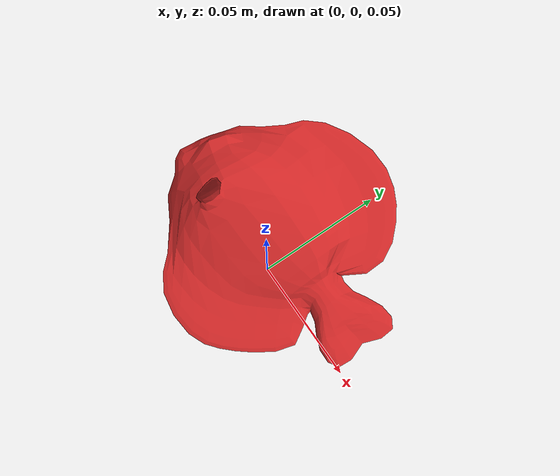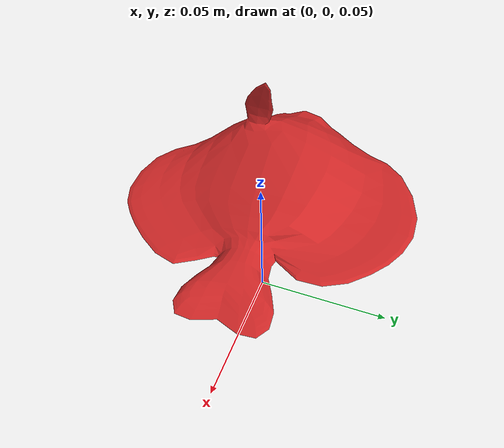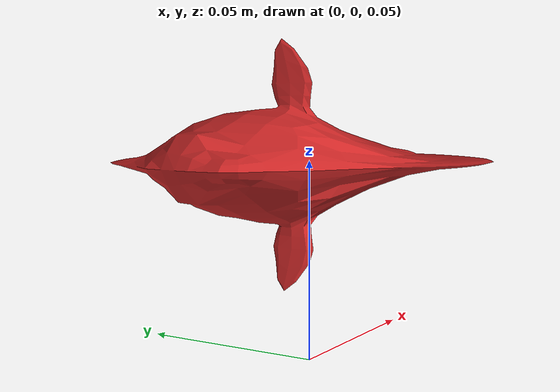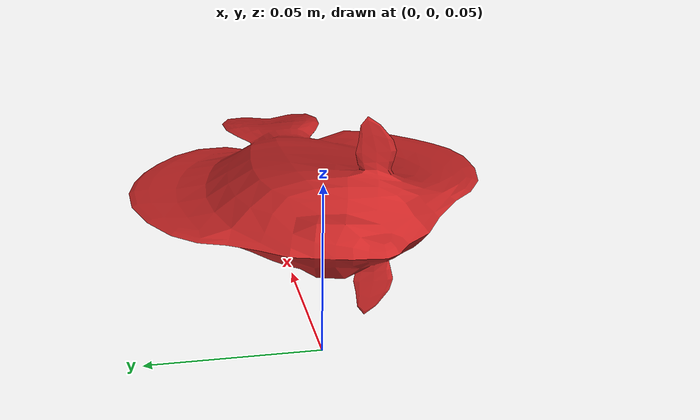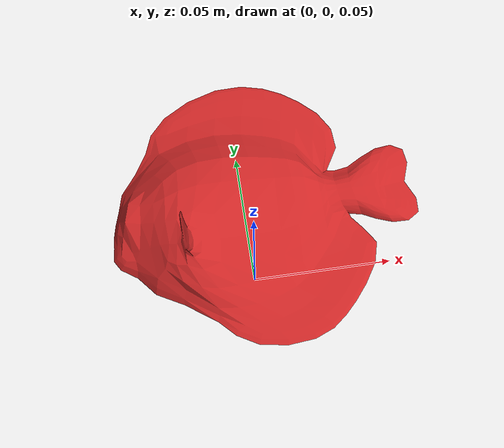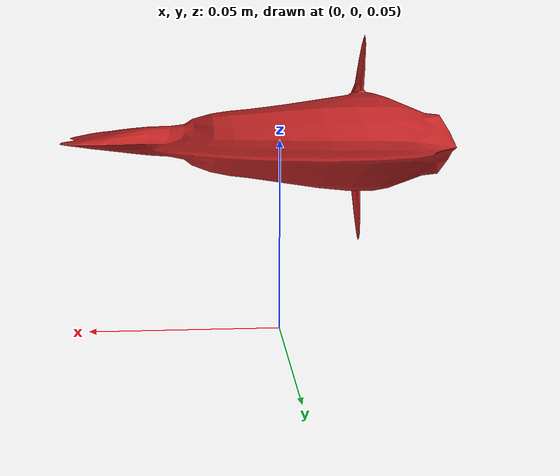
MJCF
<mujoco model="fish_red">
    <asset>
        <mesh name="fish_red_mesh" file="asset/fish_red.obj" scale="2 2 2"/>
        <texture name="fish_red_tex" type="2d" file="asset/fish_red.png"/>
        <material name="fish_red_mat" texture="fish_red_tex" specular="0.3"/>
    </asset>
    <worldbody>
        <body name="fish_red_obj" pos="0 0 0.1" euler="0 90 0">
        <freejoint/>
        <geom type="mesh" mesh="fish_red_mesh" material="fish_red_mat" mass="0.2" friction="3 10.0 10.0" solimp="0.95 0.99 0.001" solref="0.015 1" margin="0.005" group="2"/>
    </body>
    </worldbody>
</mujoco>
